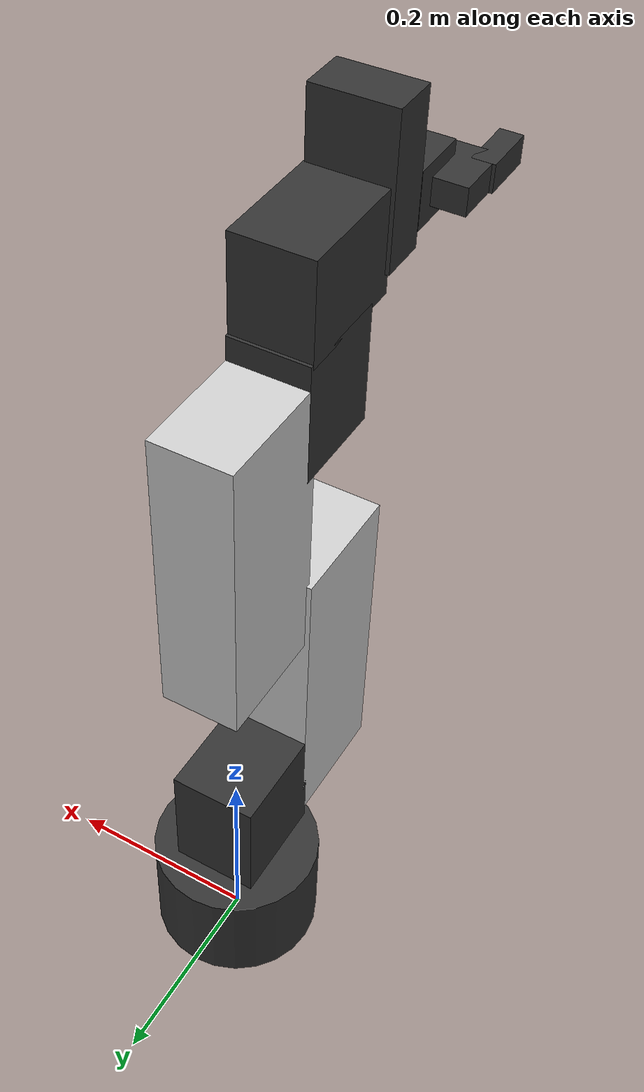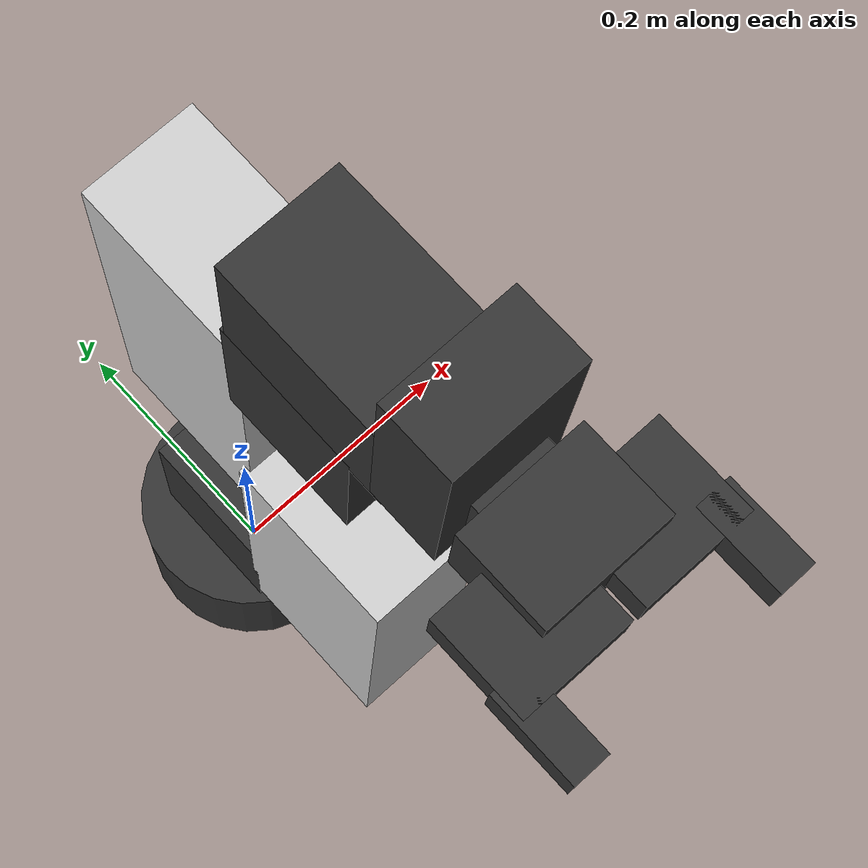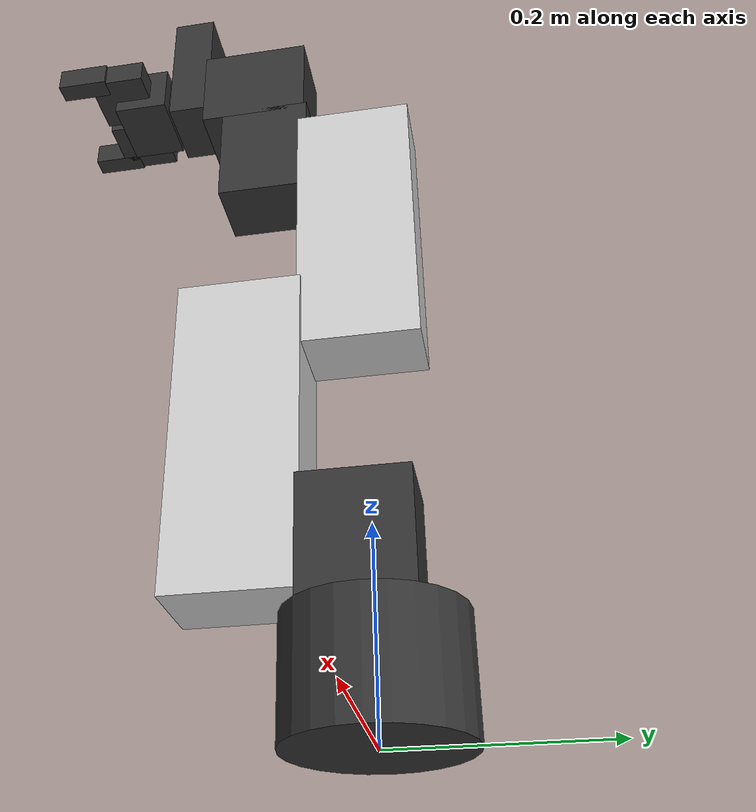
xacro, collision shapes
<?xml version="1.0"?>
<robot name="omy" xmlns:xacro="http://www.ros.org/wiki/xacro">
  <xacro:arg name="variant" default="f3m"/>
  <xacro:arg name="use_sim" default="false"/>
  <!-- Gazebo 실행 시 bringup launch에서 컨트롤러 yaml 경로를 넘겨줌 -->
  <xacro:arg name="controllers_file" default=""/>
  <xacro:property name="variant" value="$(arg variant)"/>

  <!-- 기존 파일 (관성 공식, gazebo 공용 매크로) -->
  <xacro:include filename="$(find mobile_manipulator_description)/urdf/common.xacro"/>
  <xacro:include filename="$(find mobile_manipulator_description)/urdf/gazebo.xacro"/>

  <!-- OMY 전용 파일 -->
  <xacro:include filename="$(find omy_description)/urdf/omy_arm.xacro"/>
  <xacro:include filename="$(find omy_description)/urdf/rh_p12_rn_a.xacro"/>
  <xacro:include filename="$(find omy_description)/urdf/d405.xacro"/>
  <xacro:include filename="$(find omy_description)/urdf/omy_ros2_control.xacro"/>
  <xacro:include filename="$(find omy_description)/urdf/omy_gazebo.xacro"/>

  <xacro:if value="${variant not in ('f3m', '3m')}">
    <xacro:error message="variant 는 f3m 또는 3m"/>
  </xacro:if>

  <link name="world"/>
  <joint name="world_fixed" type="fixed">
    <parent link="world"/>
    <child link="link0"/>
    <origin xyz="0 0 0" rpy="0 0 0"/>
  </joint>

  <xacro:omy_arm variant="${variant}"/>

  <xacro:if value="${variant == 'f3m'}">
    <!-- 그리퍼 - 플랜지 -y 방향(손끝 방향)으로 손가락이 뻗도록 회전해서 장착 -->
    <xacro:rh_p12_rn_a parent="end_effector_flange_link">
      <origin xyz="0 -0.006 0" rpy="${pi/2} ${-pi/2} 0"/>
    </xacro:rh_p12_rn_a>

    <!-- D405 - link6 위쪽 브래킷에 장착, 렌즈는 손끝 방향(link6 -y)을 향함 -->
    <xacro:d405 name="camera" parent="link6">
      <origin xyz="-0.021 -0.07385 0.0803" rpy="${-pi/2} 0 ${-pi/2}"/>
    </xacro:d405>

    <!-- 손끝 기준점 (IK 목표) - 플랜지에서 손끝 방향으로 0.141 m, 자세는 플랜지와 같음 -->
    <joint name="end_effector_joint" type="fixed">
      <parent link="end_effector_flange_link"/>
      <child link="end_effector_link"/>
      <origin xyz="0 -0.141 0" rpy="0 0 0"/>
    </joint>
  </xacro:if>
  <xacro:if value="${variant == '3m'}">
    <!-- 손끝 장치가 없으므로 link6 장착면을 기준점으로 -->
    <joint name="end_effector_joint" type="fixed">
      <parent link="link6"/>
      <child link="end_effector_link"/>
      <origin xyz="0 -0.103 0" rpy="0 0 0"/>
    </joint>
  </xacro:if>
  <link name="end_effector_link"/>

  <xacro:omy_ros2_control use_sim="$(arg use_sim)" variant="${variant}"/>
  <xacro:omy_gazebo variant="${variant}" controllers_file="$(arg controllers_file)"/>
</robot>

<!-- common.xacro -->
<!-- 공통 치수, 재질, 관성 매크로 -->
<robot xmlns:xacro="http://www.ros.org/wiki/xacro">

  <!-- ===================== 치수 (단위 - m, kg) ===================== -->
  <!-- 베이스 -->
  <xacro:property name="base_length" value="0.40"/>
  <xacro:property name="base_width"  value="0.30"/>
  <xacro:property name="base_height" value="0.10"/>
  <xacro:property name="base_mass"   value="5.0"/>

  <!-- 바퀴 (base_link 원점 = 바퀴 축 높이) -->
  <xacro:property name="wheel_radius" value="0.05"/>
  <xacro:property name="wheel_width"  value="0.03"/>
  <xacro:property name="wheel_mass"   value="0.5"/>
  <xacro:property name="wheel_x"      value="-0.10"/>
  <xacro:property name="wheel_y"      value="0.17"/>

  <!-- 캐스터 -->
  <xacro:property name="caster_radius" value="0.025"/>
  <xacro:property name="caster_mass"   value="0.1"/>
  <xacro:property name="caster_x"      value="0.15"/>

  <!-- SCARA 팔 -->
  <xacro:property name="arm_mount_x"     value="0.05"/>
  <xacro:property name="column_radius"   value="0.04"/>
  <xacro:property name="column_height"   value="0.25"/>
  <xacro:property name="column_mass"     value="0.5"/>

  <xacro:property name="link1_length" value="0.20"/>
  <xacro:property name="link1_width"  value="0.05"/>
  <xacro:property name="link1_height" value="0.03"/>
  <xacro:property name="link1_mass"   value="0.3"/>

  <xacro:property name="link2_length" value="0.15"/>
  <xacro:property name="link2_width"  value="0.04"/>
  <xacro:property name="link2_height" value="0.03"/>
  <xacro:property name="link2_mass"   value="0.2"/>

  <xacro:property name="quill_radius" value="0.012"/>
  <xacro:property name="quill_length" value="0.40"/>
  <xacro:property name="quill_mass"   value="0.1"/>
  <xacro:property name="quill_stroke" value="0.18"/>
  <!-- quill 프레임(= link2 바닥) 아래로 튀어나온 길이, 나머지는 위로 솟음 -->
  <xacro:property name="quill_bottom" value="0.15"/>

  <!-- 그리퍼 -->
  <xacro:property name="gripper_base_x"    value="0.04"/>
  <xacro:property name="gripper_base_y"    value="0.08"/>
  <xacro:property name="gripper_base_z"    value="0.02"/>
  <xacro:property name="gripper_base_mass" value="0.05"/>
  <xacro:property name="finger_x"    value="0.02"/>
  <xacro:property name="finger_y"    value="0.01"/>
  <xacro:property name="finger_z"    value="0.06"/>
  <xacro:property name="finger_mass" value="0.02"/>
  <xacro:property name="finger_stroke" value="0.03"/>

  <!-- ===================== 재질 (RViz 색상) ===================== -->
  <material name="dark_grey"><color rgba="0.25 0.25 0.25 1.0"/></material>
  <material name="black"><color rgba="0.05 0.05 0.05 1.0"/></material>
  <material name="orange"><color rgba="1.0 0.5 0.0 1.0"/></material>
  <material name="silver"><color rgba="0.75 0.75 0.75 1.0"/></material>
  <material name="blue"><color rgba="0.1 0.3 0.8 1.0"/></material>

  <!-- ===================== 관성 매크로 ===================== -->
  <!-- 균일 밀도 직육면체 - I = m/12 (b^2 + c^2) -->
  <xacro:macro name="box_inertia" params="m x y z *origin">
    <inertial>
      <xacro:insert_block name="origin"/>
      <mass value="${m}"/>
      <inertia ixx="${m * (y*y + z*z) / 12}" ixy="0" ixz="0"
               iyy="${m * (x*x + z*z) / 12}" iyz="0"
               izz="${m * (x*x + y*y) / 12}"/>
    </inertial>
  </xacro:macro>

  <!-- 균일 밀도 원기둥 (축 = 로컬 z) - Ixx = Iyy = m/12 (3r^2 + h^2), Izz = m r^2 / 2 -->
  <xacro:macro name="cylinder_inertia" params="m r h *origin">
    <inertial>
      <xacro:insert_block name="origin"/>
      <mass value="${m}"/>
      <inertia ixx="${m * (3*r*r + h*h) / 12}" ixy="0" ixz="0"
               iyy="${m * (3*r*r + h*h) / 12}" iyz="0"
               izz="${m * r*r / 2}"/>
    </inertial>
  </xacro:macro>

  <!-- 균일 밀도 구 - I = 2/5 m r^2 -->
  <xacro:macro name="sphere_inertia" params="m r *origin">
    <inertial>
      <xacro:insert_block name="origin"/>
      <mass value="${m}"/>
      <inertia ixx="${2 * m * r*r / 5}" ixy="0" ixz="0"
               iyy="${2 * m * r*r / 5}" iyz="0"
               izz="${2 * m * r*r / 5}"/>
    </inertial>
  </xacro:macro>

</robot>

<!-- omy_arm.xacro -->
<robot xmlns:xacro="http://www.ros.org/wiki/xacro">

  <!-- ===================== 치수 (단위 - m) ===================== -->
  <xacro:property name="omy_shoulder_height"  value="0.1715"/>  <!-- 바닥 ~ joint1 -->
  <xacro:property name="omy_shoulder_offset"  value="0.1215"/>  <!-- joint1 ~ joint2 (옆, -y) -->
  <xacro:property name="omy_upper_arm"        value="0.247"/>   <!-- joint2 ~ joint3 -->
  <xacro:property name="omy_forearm"          value="0.2195"/>  <!-- joint3 ~ joint4 -->
  <xacro:property name="omy_elbow_offset"     value="0.1215"/>  <!-- joint3 ~ joint4 (옆, +y) -->
  <xacro:property name="omy_wrist1_offset"    value="0.113"/>   <!-- joint4 ~ joint5 (옆, -y) -->
  <xacro:property name="omy_wrist2_length"    value="0.1155"/>  <!-- joint5 ~ joint6 -->
  <xacro:property name="omy_flange_offset"    value="0.103"/>   <!-- joint6 ~ 플랜지 (옆, -y) -->

  <!-- ===================== 구동기 (DYNAMIXEL-Y 데이터시트) ===================== -->
  <!-- YM080-230-A099-RH (joint1, 2) - 최대 토크 61.4 Nm, 무부하 32.2 rpm -->
  <xacro:property name="ym080_effort"   value="61.4"/>
  <xacro:property name="ym080_velocity" value="${32.2 * 2 * pi / 60}"/>
  <!-- YM070-210-A099-RH (joint3 ~ 6) - 최대 토크 31.7 Nm, 무부하 57.3 rpm -->
  <xacro:property name="ym070_effort"   value="31.7"/>
  <xacro:property name="ym070_velocity" value="${57.3 * 2 * pi / 60}"/>

  <xacro:property name="joint3_limit" value="${radians(150)}"/>

  <material name="omy_grey"><color rgba="0.2 0.2 0.2 1.0"/></material>
  <material name="omy_light"><color rgba="0.8 0.8 0.8 1.0"/></material>

  <!-- ===================== 매크로 ===================== -->
  <!-- 메시 형상 + 바운딩 박스 충돌 + CAD 관성 텐서 -->
  <xacro:macro name="omy_link" params="name mesh material:=omy_grey
                                       box_xyz box_size
                                       mass com ixx ixy ixz iyy iyz izz">
    <link name="${name}">
      <visual>
        <origin xyz="0 0 0" rpy="0 0 0"/>
        <geometry>
          <mesh filename="${mesh}" scale="0.001 0.001 0.001"/>
        </geometry>
        <material name="${material}"/>
      </visual>
      <collision>
        <origin xyz="${box_xyz}" rpy="0 0 0"/>
        <geometry>
          <box size="${box_size}"/>
        </geometry>
      </collision>
      <inertial>
        <origin xyz="${com}" rpy="0 0 0"/>
        <mass value="${mass}"/>
        <inertia ixx="${ixx}" ixy="${ixy}" ixz="${ixz}" iyy="${iyy}" iyz="${iyz}" izz="${izz}"/>
      </inertial>
    </link>
  </xacro:macro>

  <xacro:macro name="omy_joint" params="name parent child xyz axis limit effort velocity damping:=0.1">
    <joint name="${name}" type="revolute">
      <parent link="${parent}"/>
      <child link="${child}"/>
      <origin xyz="${xyz}" rpy="0 0 0"/>
      <axis xyz="${axis}"/>
      <limit lower="${-limit}" upper="${limit}" effort="${effort}" velocity="${velocity}"/>
      <dynamics damping="${damping}"/>
    </joint>
  </xacro:macro>

  <!-- variant = f3m (카메라 브래킷이 달린 link6 + 플랜지) 또는 3m -->
  <xacro:macro name="omy_arm" params="variant">
    <xacro:property name="mesh_dir" value="package://omy_description/meshes/omy_f3m"/>

    <!-- 베이스 유닛 (바닥 고정) -->
    <link name="link0">
      <visual>
        <origin xyz="0 0 0" rpy="0 0 0"/>
        <geometry>
          <mesh filename="${mesh_dir}/base_unit.stl" scale="0.001 0.001 0.001"/>
        </geometry>
        <material name="omy_grey"/>
      </visual>
      <collision>
        <origin xyz="0 0 0.057" rpy="0 0 0"/>
        <geometry>
          <cylinder radius="0.085" length="0.114"/>
        </geometry>
      </collision>
      <inertial>
        <origin xyz="-0.0040216 0.0013084 0.0550735" rpy="0 0 0"/>
        <mass value="1.5287486"/>
        <inertia ixx="4.6428203e-03" ixy="4.4405532e-05" ixz="-1.5049296e-04"
                 iyy="4.9736955e-03" iyz="2.0756047e-05" izz="6.4078321e-03"/>
      </inertial>
    </link>

    <!-- 1축 - 몸통 회전 (z) -->
    <xacro:omy_joint name="joint1" parent="link0" child="link1"
                     xyz="0 0 ${omy_shoulder_height}" axis="0 0 1" limit="${2*pi}"
                     effort="${ym080_effort}" velocity="${ym080_velocity}" damping="0.05"/>
    <xacro:omy_link name="link1" mesh="${mesh_dir}/link1.stl"
                    box_xyz="0 -0.01025 0.00155" box_size="0.087 0.1075 0.1271"
                    mass="2.0648832" com="-0.0001106 -0.0054711 -0.0158977"
                    ixx="3.033219e-03" ixy="5.1792838e-06" ixz="3.3357961e-06"
                    iyy="2.7276724e-03" iyz="1.7934953e-04" izz="2.2826576e-03"/>

    <!-- 2축 - 어깨 (y) -->
    <xacro:omy_joint name="joint2" parent="link1" child="link2"
                     xyz="0 ${-omy_shoulder_offset} 0" axis="0 1 0" limit="${2*pi}"
                     effort="${ym080_effort}" velocity="${ym080_velocity}"/>
    <xacro:omy_link name="link2" mesh="${mesh_dir}/link2.stl" material="omy_light"
                    box_xyz="0 -0.00155 0.121" box_size="0.087 0.1271 0.329"
                    mass="3.6795395" com="0.0000114 0.0161842 0.1036063"
                    ixx="5.1731918e-02" ixy="2.3958819e-06" ixz="5.789396e-05"
                    iyy="5.0353401e-02" iyz="-4.3825716e-04" izz="4.501436e-03"/>

    <!-- 3축 - 팔꿈치 (y), 유일하게 ±150° 로 제한 -->
    <xacro:omy_joint name="joint3" parent="link2" child="link3"
                     xyz="0 0 ${omy_upper_arm}" axis="0 1 0" limit="${joint3_limit}"
                     effort="${ym070_effort}" velocity="${ym070_velocity}"/>
    <xacro:omy_link name="link3" mesh="${mesh_dir}/link3.stl" material="omy_light"
                    box_xyz="0 0.1182 0.10975" box_size="0.077 0.1224 0.2965"
                    mass="2.3865916" com="0.0000781 0.1071848 0.1411727"
                    ixx="2.2694399e-02" ixy="-9.4142428e-07" ixz="-1.8551757e-05"
                    iyy="2.1920087e-02" iyz="1.9179387e-04" izz="2.7761559e-03"/>

    <!-- 4축 - 손목 1 (y) -->
    <xacro:omy_joint name="joint4" parent="link3" child="link4"
                     xyz="0 ${omy_elbow_offset} ${omy_forearm}" axis="0 1 0" limit="${2*pi}"
                     effort="${ym070_effort}" velocity="${ym070_velocity}"/>
    <xacro:omy_link name="link4" mesh="${mesh_dir}/link4.stl"
                    box_xyz="0 -0.103 0.0033" box_size="0.077 0.097 0.1174"
                    mass="1.4002347" com="-0.0001332 -0.1074667 0.0190907"
                    ixx="1.7545679e-03" ixy="-4.5863379e-06" ixz="-1.7759142e-06"
                    iyy="1.5652147e-03" iyz="1.5339913e-04" izz="1.2159839e-03"/>

    <!-- 5축 - 손목 2 (z) -->
    <xacro:omy_joint name="joint5" parent="link4" child="link5"
                     xyz="0 ${-omy_wrist1_offset} 0" axis="0 0 1" limit="${2*pi}"
                     effort="${ym070_effort}" velocity="${ym070_velocity}"/>
    <xacro:omy_link name="link5" mesh="${mesh_dir}/link5.stl"
                    box_xyz="0 -0.0033 0.1055" box_size="0.077 0.1174 0.097"
                    mass="1.4002347" com="0.0001332 -0.0190907 0.1099667"
                    ixx="1.7545679e-03" ixy="-1.7759143e-06" ixz="-4.5863376e-06"
                    iyy="1.2159839e-03" iyz="1.5339913e-04" izz="1.5652147e-03"/>

    <!-- 6축 - 손목 3 (y) -->
    <xacro:omy_joint name="joint6" parent="link5" child="link6"
                     xyz="0 0 ${omy_wrist2_length}" axis="0 1 0" limit="${2*pi}"
                     effort="${ym070_effort}" velocity="${ym070_velocity}"/>
    <xacro:if value="${variant == 'f3m'}">
      <!-- F3M 의 link6 메시에는 카메라 브래킷이 포함되어 있음 (위쪽으로 0.104 m 까지) -->
      <xacro:omy_link name="link6" mesh="${mesh_dir}/link6.stl"
                      box_xyz="-0.0024 -0.08 0.03325" box_size="0.0798 0.046 0.1415"
                      mass="0.4001548" com="0.0000111 -0.0805941 0.0093029"
                      ixx="5.6741276e-04" ixy="2.0073339e-07" ixz="-1.2345347e-06"
                      iyy="6.2966706e-04" iyz="-5.6318805e-05" izz="1.9890515e-04"/>

      <!-- 그리퍼 장착 플랜지 -->
      <joint name="end_effector_flange_joint" type="fixed">
        <parent link="link6"/>
        <child link="end_effector_flange_link"/>
        <origin xyz="0 ${-omy_flange_offset} 0" rpy="0 0 0"/>
      </joint>
      <xacro:omy_link name="end_effector_flange_link" mesh="${mesh_dir}/flange.stl"
                      box_xyz="0 -0.00575 0" box_size="0.048 0.0115 0.042"
                      mass="0.0166188" com="0 -0.0031903 0"
                      ixx="2.9075758e-06" ixy="0" ixz="0"
                      iyy="8.1254311e-06" iyz="0" izz="5.4926181e-06"/>
    </xacro:if>
    <xacro:if value="${variant == '3m'}">
      <xacro:omy_link name="link6" mesh="package://omy_description/meshes/omy_3m/link6.stl"
                      box_xyz="-0.0024 -0.08 0" box_size="0.0798 0.046 0.075"
                      mass="0.3244269" com="0.0000111 -0.0805941 0.0093029"
                      ixx="1.9398849e-04" ixy="2.1420132e-07" ixz="-1.2342019e-06"
                      iyy="2.491307e-04" iyz="-3.8937348e-06" izz="1.6536751e-04"/>
    </xacro:if>
  </xacro:macro>

</robot>

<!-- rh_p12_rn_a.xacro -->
<robot xmlns:xacro="http://www.ros.org/wiki/xacro">

  <xacro:property name="rh_finger_y"    value="0.008"/>      <!-- 베이스 중심 ~ 첫 마디 축 (옆) -->
  <xacro:property name="rh_finger_z"    value="0.048"/>      <!-- 베이스 바닥 ~ 첫 마디 축 -->
  <xacro:property name="rh_tip_y"       value="0.0493634"/>  <!-- 첫 마디 축 ~ 손끝 마디 축 -->
  <xacro:property name="rh_tip_z"       value="0.0285"/>
  <xacro:property name="rh_close_angle" value="1.13514578304"/>
  <!-- 속도는 ROBOTIS 설정값, 토크는 임의 값 (position 제어라 시뮬레이션 동작에는 영향 없음) -->
  <xacro:property name="rh_velocity"    value="6.5"/>
  <xacro:property name="rh_effort"      value="10.0"/>

  <!-- 메시 + 바운딩 박스 충돌 + 박스 관성 -->
  <xacro:macro name="rh_link" params="name mesh mass com box_xyz sx sy sz">
    <link name="${name}">
      <visual>
        <origin xyz="0 0 0" rpy="0 0 0"/>
        <geometry>
          <mesh filename="package://omy_description/meshes/rh_p12_rn_a/${mesh}.stl" scale="0.001 0.001 0.001"/>
        </geometry>
        <material name="omy_grey"/>
      </visual>
      <collision>
        <origin xyz="${box_xyz}" rpy="0 0 0"/>
        <geometry>
          <box size="${sx} ${sy} ${sz}"/>
        </geometry>
      </collision>
      <xacro:box_inertia m="${mass}" x="${sx}" y="${sy}" z="${sz}">
        <origin xyz="${com}" rpy="0 0 0"/>
      </xacro:box_inertia>
    </link>
  </xacro:macro>

  <xacro:macro name="rh_joint" params="name parent child xyz axis mimic:=''">
    <joint name="${name}" type="revolute">
      <parent link="${parent}"/>
      <child link="${child}"/>
      <origin xyz="${xyz}" rpy="0 0 0"/>
      <axis xyz="${axis}"/>
      <limit lower="0.0" upper="${rh_close_angle}" effort="${rh_effort}" velocity="${rh_velocity}"/>
      <dynamics damping="0.7"/>
      <xacro:if value="${mimic != ''}">
        <mimic joint="${mimic}" multiplier="1" offset="0"/>
      </xacro:if>
    </joint>
  </xacro:macro>

  <xacro:macro name="rh_p12_rn_a" params="parent *origin">
    <joint name="gripper_fixed" type="fixed">
      <parent link="${parent}"/>
      <child link="rh_p12_rn_base"/>
      <xacro:insert_block name="origin"/>
    </joint>

    <xacro:rh_link name="rh_p12_rn_base" mesh="base" mass="0.236" com="0 0 0.032"
                   box_xyz="0 0 0.0295" sx="0.054" sy="0.08" sz="0.059"/>

    <!-- 오른쪽 손가락 (+y) -->
    <xacro:rh_joint name="rh_r1_joint" parent="rh_p12_rn_base" child="rh_p12_rn_r1"
                    xyz="0 ${rh_finger_y} ${rh_finger_z}" axis="1 0 0"/>
    <xacro:rh_link name="rh_p12_rn_r1" mesh="r1" mass="0.068" com="0 0.034 0.004"
                   box_xyz="0 0.03005 0.00175" sx="0.026" sy="0.0681" sz="0.0615"/>
    <xacro:rh_joint name="rh_r2" parent="rh_p12_rn_r1" child="rh_p12_rn_r2"
                    xyz="0 ${rh_tip_y} ${rh_tip_z}" axis="-1 0 0" mimic="rh_r1_joint"/>
    <xacro:rh_link name="rh_p12_rn_r2" mesh="r2" mass="0.022" com="0 0.006 0.011"
                   box_xyz="0 0.00705 0.0126" sx="0.026" sy="0.0219" sz="0.0548"/>

    <!-- 왼쪽 손가락 (-y), 오른쪽과 거울 대칭 -->
    <xacro:rh_joint name="rh_l1" parent="rh_p12_rn_base" child="rh_p12_rn_l1"
                    xyz="0 ${-rh_finger_y} ${rh_finger_z}" axis="-1 0 0" mimic="rh_r1_joint"/>
    <xacro:rh_link name="rh_p12_rn_l1" mesh="l1" mass="0.068" com="0 -0.034 0.004"
                   box_xyz="0 -0.03005 0.00175" sx="0.026" sy="0.0681" sz="0.0615"/>
    <xacro:rh_joint name="rh_l2" parent="rh_p12_rn_l1" child="rh_p12_rn_l2"
                    xyz="0 ${-rh_tip_y} ${rh_tip_z}" axis="1 0 0" mimic="rh_r1_joint"/>
    <xacro:rh_link name="rh_p12_rn_l2" mesh="l2" mass="0.022" com="0 -0.006 0.011"
                   box_xyz="0 -0.00705 0.0126" sx="0.026" sy="0.0219" sz="0.0548"/>
  </xacro:macro>

</robot>

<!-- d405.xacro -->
<robot xmlns:xacro="http://www.ros.org/wiki/xacro">

  <xacro:property name="d405_width"  value="0.042"/>
  <xacro:property name="d405_height" value="0.042"/>
  <xacro:property name="d405_depth"  value="0.023"/>
  <xacro:property name="d405_mass"   value="0.072"/>
  <!-- 나사 구멍 ~ 왼쪽 영상 센서 (camera_link 원점) -->
  <xacro:property name="d405_screw_to_link" value="0.01085 0.009 0.021"/>
  <!-- camera_link ~ 본체 중심 (본체는 렌즈면 뒤쪽, 센서가 본체 중앙에서 옆으로 치우쳐 있음) -->
  <xacro:property name="d405_body_center" value="-0.0078 -0.009 0"/>

  <xacro:property name="d405_hfov"      value="${radians(87)}"/>
  <xacro:property name="d405_width_px"  value="848"/>
  <xacro:property name="d405_height_px" value="480"/>
  <xacro:property name="d405_min_depth" value="0.07"/>
  <xacro:property name="d405_max_depth" value="0.5"/>

  <material name="aluminum"><color rgba="0.6 0.6 0.65 1.0"/></material>

  <xacro:macro name="optical_frame" params="name parent">
    <joint name="${name}_joint" type="fixed">
      <parent link="${parent}"/>
      <child link="${name}"/>
      <origin xyz="0 0 0" rpy="${-pi/2} 0 ${-pi/2}"/>
    </joint>
    <link name="${name}"/>
  </xacro:macro>

  <xacro:macro name="d405" params="name:=camera parent *origin">
    <joint name="${name}_joint" type="fixed">
      <parent link="${parent}"/>
      <child link="${name}_bottom_screw_frame"/>
      <xacro:insert_block name="origin"/>
    </joint>
    <link name="${name}_bottom_screw_frame"/>

    <joint name="${name}_link_joint" type="fixed">
      <parent link="${name}_bottom_screw_frame"/>
      <child link="${name}_link"/>
      <origin xyz="${d405_screw_to_link}" rpy="0 0 0"/>
    </joint>
    <link name="${name}_link">
      <visual>
        <origin xyz="${d405_body_center}" rpy="0 0 0"/>
        <geometry>
          <box size="${d405_depth} ${d405_width} ${d405_height}"/>
        </geometry>
        <material name="aluminum"/>
      </visual>
      <collision>
        <origin xyz="${d405_body_center}" rpy="0 0 0"/>
        <geometry>
          <box size="${d405_depth} ${d405_width} ${d405_height}"/>
        </geometry>
      </collision>
      <xacro:box_inertia m="${d405_mass}" x="${d405_depth}" y="${d405_width}" z="${d405_height}">
        <origin xyz="${d405_body_center}" rpy="0 0 0"/>
      </xacro:box_inertia>
    </link>

    <xacro:optical_frame name="${name}_depth_optical_frame" parent="${name}_link"/>
    <xacro:optical_frame name="${name}_color_optical_frame" parent="${name}_link"/>
  </xacro:macro>

  <xacro:macro name="d405_gazebo" params="name:=camera namespace:=d405 rate:=15">
    <gazebo reference="${name}_link">
      <material>Gazebo/Grey</material>
      <sensor name="${name}_d405" type="depth">
        <always_on>true</always_on>
        <update_rate>${rate}</update_rate>
        <visualize>false</visualize>
        <camera name="${name}">
          <horizontal_fov>${d405_hfov}</horizontal_fov>
          <image>
            <width>${d405_width_px}</width>
            <height>${d405_height_px}</height>
            <format>R8G8B8</format>
          </image>
          <clip>
            <near>${d405_min_depth}</near>
            <far>3.0</far>
          </clip>
        </camera>
        <plugin name="${name}_d405_driver" filename="libgazebo_ros_camera.so">
          <ros>
            <namespace>${namespace}</namespace>
          </ros>
          <camera_name>color</camera_name>
          <frame_name>${name}_depth_optical_frame</frame_name>
          <hack_baseline>0.0</hack_baseline>
          <min_depth>${d405_min_depth}</min_depth>
          <max_depth>${d405_max_depth}</max_depth>
        </plugin>
      </sensor>
    </gazebo>
  </xacro:macro>

</robot>
